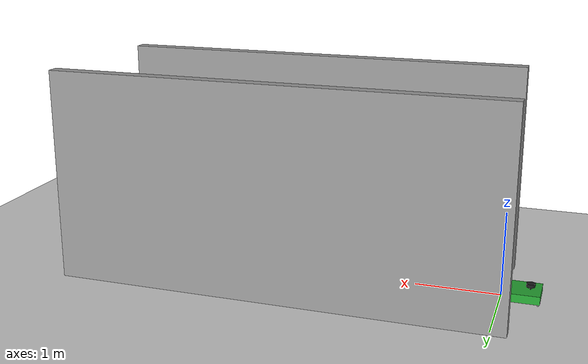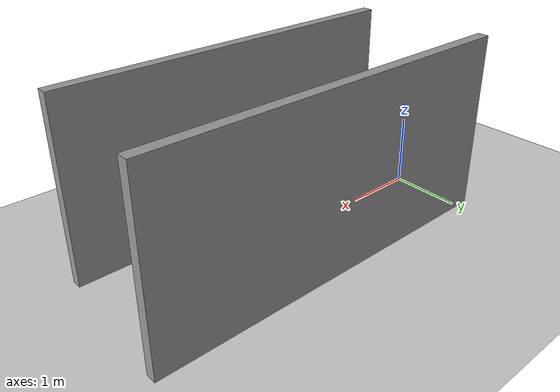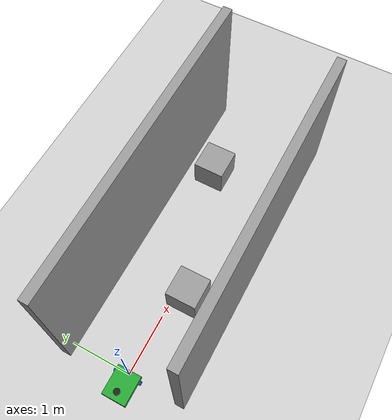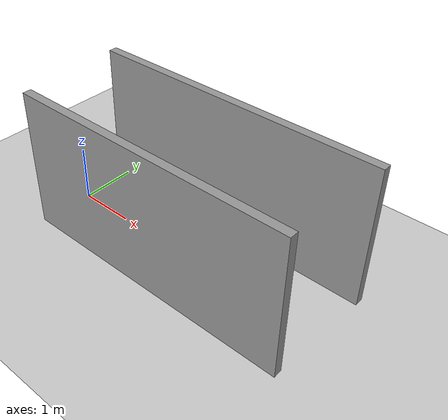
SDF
<sdf version="1.7">
 <world name="default">
  <light name="sun" type="directional">
   <pose>0 0 10 0 -0 0</pose>
   <diffuse>0.8 0.8 0.8 1</diffuse>
   <specular>0.2 0.2 0.2 1</specular>
   <attenuation>
    <range>1000</range>
    <constant>0.9</constant>
    <linear>0.01</linear>
    <quadratic>0.001</quadratic>
   </attenuation>
   <direction>-0.5 0.1 -0.9</direction>
   <spot><inner_angle>0</inner_angle><outer_angle>0</outer_angle><falloff>0</falloff></spot>
  </light>
  <model name="ground_plane">
   <static>1</static>
   <link name="link">
    <collision name="collision">
     <geometry><plane><normal>0 0 1</normal><size>100 100</size></plane></geometry>
     <surface><friction><ode><mu>100</mu><mu2>50</mu2></ode></friction></surface>
    </collision>
    <visual name="visual">
     <cast_shadows>0</cast_shadows>
     <geometry><plane><normal>0 0 1</normal><size>100 100</size></plane></geometry>
     <material>
      <script><uri>file://media/materials/scripts/gazebo.material</uri><name>Gazebo/Grey</name></script>
     </material>
    </visual>
   </link>
  </model>
  <gravity>0 0 -9.8</gravity>
  <magnetic_field>6e-06 2.3e-05 -4.2e-05</magnetic_field>
  <atmosphere type="adiabatic"/>
  <physics type="ode">
   <max_step_size>0.001</max_step_size>
   <real_time_factor>1</real_time_factor>
   <real_time_update_rate>1000</real_time_update_rate>
  </physics>
  <scene><ambient>0.4 0.4 0.4 1</ambient><background>0.7 0.7 0.7 1</background><shadows>1</shadows></scene>
  <audio><device>default</device></audio>
  <spherical_coordinates>
   <surface_model>EARTH_WGS84</surface_model>
   <latitude_deg>0</latitude_deg>
   <longitude_deg>0</longitude_deg>
   <elevation>0</elevation>
   <heading_deg>0</heading_deg>
  </spherical_coordinates>
  <model name="my_bot">
   <link name="base_link">
    <inertial>
     <pose>-0.186129 0 0.054194 0 -0 0</pose>
     <mass>0.62</mass>
     <inertia>
      <ixx>0.00882906</ixx>
      <ixy>0</ixy>
      <ixz>0.000686065</ixz>
      <iyy>0.0129775</iyy>
      <iyz>-6.77626e-21</iyz>
      <izz>0.0190516</izz>
     </inertia>
    </inertial>
    <collision name="base_link_fixed_joint_lump__chassis_collision">
     <pose>-0.16 0 0.04 0 -0 0</pose>
     <geometry><box><size>0.48 0.4 0.1</size></box></geometry>
    </collision>
    <collision name="base_link_fixed_joint_lump__caster_wheel_collision_1">
     <pose>-0.38 0.19 -0.02 0 -0 0</pose>
     <geometry><sphere><radius>0.01</radius></sphere></geometry>
     <surface><friction><ode><mu>0.001</mu><mu2>0.001</mu2></ode></friction></surface>
    </collision>
    <collision name="base_link_fixed_joint_lump__caster_wheel2_collision_2">
     <pose>-0.38 -0.19 -0.02 0 -0 0</pose>
     <geometry><sphere><radius>0.01</radius></sphere></geometry>
     <surface><friction><ode><mu>0.001</mu><mu2>0.001</mu2></ode></friction></surface>
    </collision>
    <collision name="base_link_fixed_joint_lump__laser_frame_collision_3">
     <pose>-0.278 0 0.14 0 -0 0</pose>
     <geometry><cylinder><length>0.04</length><radius>0.05</radius></cylinder></geometry>
    </collision>
    <visual name="base_link_fixed_joint_lump__chassis_visual">
     <pose>-0.16 0 0.04 0 -0 0</pose>
     <geometry><box><size>0.48 0.4 0.1</size></box></geometry>
     <material>
      <script><name>Gazebo/Green</name><uri>file://media/materials/scripts/gazebo.material</uri></script>
     </material>
    </visual>
    <visual name="base_link_fixed_joint_lump__caster_wheel_visual_1">
     <pose>-0.38 0.19 -0.02 0 -0 0</pose>
     <geometry><sphere><radius>0.01</radius></sphere></geometry>
     <material>
      <script><name>Gazebo/White</name><uri>file://media/materials/scripts/gazebo.material</uri></script>
     </material>
    </visual>
    <visual name="base_link_fixed_joint_lump__caster_wheel2_visual_2">
     <pose>-0.38 -0.19 -0.02 0 -0 0</pose>
     <geometry><sphere><radius>0.01</radius></sphere></geometry>
     <material>
      <script><name>Gazebo/White</name><uri>file://media/materials/scripts/gazebo.material</uri></script>
     </material>
    </visual>
    <visual name="base_link_fixed_joint_lump__laser_frame_visual_3">
     <pose>-0.278 0 0.14 0 -0 0</pose>
     <geometry><cylinder><length>0.04</length><radius>0.05</radius></cylinder></geometry>
     <material>
      <script><name>Gazebo/Black</name><uri>file://media/materials/scripts/gazebo.material</uri></script>
     </material>
    </visual>
    <visual name="base_link_fixed_joint_lump__laser_frame_visual_4">
     <pose>-0.278 0 0.09 0 -0 0</pose>
     <geometry><cylinder><length>0.1</length><radius>0.01</radius></cylinder></geometry>
     <material>
      <script><name>Gazebo/Black</name><uri>file://media/materials/scripts/gazebo.material</uri></script>
     </material>
    </visual>
    <sensor name="laser" type="ray">
     <visualize>0</visualize>
     <update_rate>10</update_rate>
     <ray>
      <scan>
       <horizontal>
        <samples>360</samples>
        <min_angle>-3.14</min_angle>
        <max_angle>3.14</max_angle>
        <resolution>1</resolution>
       </horizontal>
       <vertical><samples>1</samples><min_angle>0</min_angle><max_angle>0</max_angle></vertical>
      </scan>
      <range><min>0.3</min><max>12</max></range>
     </ray>
     <plugin name="laser_controller" filename="libgazebo_ros_ray_sensor.so">
      <ros><argument>~/out:=scan</argument></ros>
      <output_type>sensor_msgs/LaserScan</output_type>
      <frame_name>laser_frame</frame_name>
     </plugin>
     <pose>-0.278 0 0.14 0 -0 0</pose>
    </sensor>
   </link>
   <joint name="left_wheel_joint" type="revolute">
    <pose relative_to="base_link">0 0.22 0 -1.5708 0 0</pose>
    <parent>base_link</parent>
    <child>left_wheel</child>
    <axis>
     <xyz>0 0 1</xyz>
     <limit><lower>-1e+16</lower><upper>1e+16</upper></limit>
     <dynamics><spring_reference>0</spring_reference><spring_stiffness>0</spring_stiffness></dynamics>
    </axis>
   </joint>
   <link name="left_wheel">
    <pose relative_to="left_wheel_joint">0 0 0 0 -0 0</pose>
    <inertial>
     <mass>0.05</mass>
     <inertia>
      <ixx>1.40667e-05</ixx>
      <ixy>0</ixy>
      <ixz>0</ixz>
      <iyy>1.40667e-05</iyy>
      <iyz>0</iyz>
      <izz>2.25e-05</izz>
     </inertia>
    </inertial>
    <collision name="left_wheel_collision"><geometry><sphere><radius>0.03</radius></sphere></geometry></collision>
    <visual name="left_wheel_visual">
     <geometry><cylinder><length>0.026</length><radius>0.03</radius></cylinder></geometry>
     <material>
      <script><name>Gazebo/Blue</name><uri>file://media/materials/scripts/gazebo.material</uri></script>
     </material>
    </visual>
   </link>
   <joint name="right_wheel_joint" type="revolute">
    <pose relative_to="base_link">0 -0.22 0 1.5708 -0 0</pose>
    <parent>base_link</parent>
    <child>right_wheel</child>
    <axis>
     <xyz>0 0 -1</xyz>
     <limit><lower>-1e+16</lower><upper>1e+16</upper></limit>
     <dynamics><spring_reference>0</spring_reference><spring_stiffness>0</spring_stiffness></dynamics>
    </axis>
   </joint>
   <link name="right_wheel">
    <pose relative_to="right_wheel_joint">0 0 0 0 -0 0</pose>
    <inertial>
     <mass>0.05</mass>
     <inertia>
      <ixx>1.40667e-05</ixx>
      <ixy>0</ixy>
      <ixz>0</ixz>
      <iyy>1.40667e-05</iyy>
      <iyz>0</iyz>
      <izz>2.25e-05</izz>
     </inertia>
    </inertial>
    <collision name="right_wheel_collision">
     <geometry><sphere><radius>0.03</radius></sphere></geometry>
    </collision>
    <visual name="right_wheel_visual">
     <geometry><cylinder><length>0.026</length><radius>0.03</radius></cylinder></geometry>
     <material>
      <script><name>Gazebo/Blue</name><uri>file://media/materials/scripts/gazebo.material</uri></script>
     </material>
    </visual>
   </link>
   <static>0</static>
   <plugin name="diff_drive" filename="libgazebo_ros_diff_drive.so">
    <left_joint>left_wheel_joint</left_joint>
    <right_joint>right_wheel_joint</right_joint>
    <wheel_separation>0.426</wheel_separation>
    <wheel_diameter>0.066</wheel_diameter>
    <max_wheel_torque>200</max_wheel_torque>
    <max_wheel_acceleration>10.0</max_wheel_acceleration>
    <odometry_topic>odom</odometry_topic>
    <odometry_frame>odom</odometry_frame>
    <robot_base_frame>base_link</robot_base_frame>
    <publish_odom>1</publish_odom>
    <publish_odom_tf>1</publish_odom_tf>
    <publish_wheel_tf>1</publish_wheel_tf>
   </plugin>
   <pose>-0.043836 0.000901 0.029994 -2.8e-05 2e-06 0.001218</pose>
  </model>
  <model name="corridor">
   <pose>2.44 0.06 0 0 -0 0</pose>
   <link name="Wall_10">
    <collision name="Wall_10_Collision">
     <geometry><box><size>5.25 0.15 2.5</size></box></geometry>
     <pose>0 0 1.25 0 -0 0</pose>
    </collision>
    <visual name="Wall_10_Visual">
     <pose>0 0 1.25 0 -0 0</pose>
     <geometry><box><size>5.25 0.15 2.5</size></box></geometry>
     <material>
      <script><uri>file://media/materials/scripts/gazebo.material</uri><name>Gazebo/Grey</name></script>
      <ambient>1 1 1 1</ambient>
     </material>
     <meta><layer>0</layer></meta>
    </visual>
    <pose>0 0.95 0 0 -0 0</pose>
   </link>
   <link name="Wall_3">
    <collision name="Wall_3_Collision">
     <geometry><box><size>5 0.15 2.5</size></box></geometry>
     <pose>0 0 1.25 0 -0 0</pose>
    </collision>
    <visual name="Wall_3_Visual">
     <pose>0 0 1.25 0 -0 0</pose>
     <geometry><box><size>5 0.15 2.5</size></box></geometry>
     <material>
      <script><uri>file://media/materials/scripts/gazebo.material</uri><name>Gazebo/Grey</name></script>
      <ambient>1 1 1 1</ambient>
     </material>
     <meta><layer>0</layer></meta>
    </visual>
    <pose>0.005 -0.95 0 0 -0 0</pose>
   </link>
   <static>1</static>
  </model>
  <model name="dummy">
   <link name="link_0">
    <inertial>
     <mass>1</mass>
     <inertia>
      <ixx>0.166667</ixx>
      <ixy>0</ixy>
      <ixz>0</ixz>
      <iyy>0.166667</iyy>
      <iyz>0</iyz>
      <izz>0.166667</izz>
     </inertia>
    </inertial>
    <pose>2e-06 -0 0 0 -0 0</pose>
    <visual name="visual">
     <geometry><box><size>0.5 0.5 0.5</size></box></geometry>
     <material>
      <lighting>1</lighting>
      <script><uri>file://media/materials/scripts/gazebo.material</uri><name>Gazebo/Grey</name></script>
      <shader type="pixel"><normal_map>__default__</normal_map></shader>
      <ambient>0.3 0.3 0.3 1</ambient>
      <diffuse>0.7 0.7 0.7 1</diffuse>
      <specular>0.01 0.01 0.01 1</specular>
      <emissive>0 0 0 1</emissive>
     </material>
    </visual>
    <collision name="collision">
     <geometry><box><size>0.5 0.5 0.5</size></box></geometry>
     <surface>
      <friction>
       <ode><mu>1</mu><mu2>1</mu2><fdir1>0 0 0</fdir1><slip1>0</slip1><slip2>0</slip2></ode>
       <torsional>
        <coefficient>1</coefficient>
        <patch_radius>0</patch_radius>
        <surface_radius>0</surface_radius>
        <use_patch_radius>1</use_patch_radius>
        <ode><slip>0</slip></ode>
       </torsional>
      </friction>
      <bounce><restitution_coefficient>0</restitution_coefficient><threshold>1e+06</threshold></bounce>
      <contact>
       <collide_without_contact>0</collide_without_contact>
       <collide_without_contact_bitmask>1</collide_without_contact_bitmask>
       <collide_bitmask>1</collide_bitmask>
       <ode>
        <soft_cfm>0</soft_cfm>
        <soft_erp>0.2</soft_erp>
        <kp>1e+13</kp>
        <kd>1</kd>
        <max_vel>0.01</max_vel>
        <min_depth>0</min_depth>
       </ode>
       <bullet>
        <split_impulse>1</split_impulse>
        <split_impulse_penetration_threshold>-0.01</split_impulse_penetration_threshold>
        <soft_cfm>0</soft_cfm>
        <soft_erp>0.2</soft_erp>
        <kp>1e+13</kp>
        <kd>1</kd>
       </bullet>
      </contact>
     </surface>
    </collision>
   </link>
   <static>0</static>
   <pose>3.56624 0.408223 0.5 0 -0 0</pose>
  </model>
  <model name="dummy_clone">
   <link name="link_0">
    <inertial>
     <mass>1</mass>
     <inertia>
      <ixx>0.166667</ixx>
      <ixy>0</ixy>
      <ixz>0</ixz>
      <iyy>0.166667</iyy>
      <iyz>0</iyz>
      <izz>0.166667</izz>
     </inertia>
    </inertial>
    <pose>2e-06 -0 0 0 -0 0</pose>
    <visual name="visual">
     <geometry><box><size>0.5 0.5 0.5</size></box></geometry>
     <material>
      <lighting>1</lighting>
      <script><uri>file://media/materials/scripts/gazebo.material</uri><name>Gazebo/Grey</name></script>
      <shader type="pixel"><normal_map>__default__</normal_map></shader>
      <ambient>0.3 0.3 0.3 1</ambient>
      <diffuse>0.7 0.7 0.7 1</diffuse>
      <specular>0.01 0.01 0.01 1</specular>
      <emissive>0 0 0 1</emissive>
     </material>
    </visual>
    <collision name="collision">
     <geometry><box><size>0.5 0.5 0.5</size></box></geometry>
     <surface>
      <friction>
       <ode><mu>1</mu><mu2>1</mu2><fdir1>0 0 0</fdir1><slip1>0</slip1><slip2>0</slip2></ode>
       <torsional>
        <coefficient>1</coefficient>
        <patch_radius>0</patch_radius>
        <surface_radius>0</surface_radius>
        <use_patch_radius>1</use_patch_radius>
        <ode><slip>0</slip></ode>
       </torsional>
      </friction>
      <bounce><restitution_coefficient>0</restitution_coefficient><threshold>1e+06</threshold></bounce>
      <contact>
       <collide_without_contact>0</collide_without_contact>
       <collide_without_contact_bitmask>1</collide_without_contact_bitmask>
       <collide_bitmask>1</collide_bitmask>
       <ode>
        <soft_cfm>0</soft_cfm>
        <soft_erp>0.2</soft_erp>
        <kp>1e+13</kp>
        <kd>1</kd>
        <max_vel>0.01</max_vel>
        <min_depth>0</min_depth>
       </ode>
       <bullet>
        <split_impulse>1</split_impulse>
        <split_impulse_penetration_threshold>-0.01</split_impulse_penetration_threshold>
        <soft_cfm>0</soft_cfm>
        <soft_erp>0.2</soft_erp>
        <kp>1e+13</kp>
        <kd>1</kd>
       </bullet>
      </contact>
     </surface>
    </collision>
   </link>
   <static>0</static>
   <pose>1.40257 -0.254743 0.5 0 -0 0</pose>
  </model>
 </world>
</sdf>
